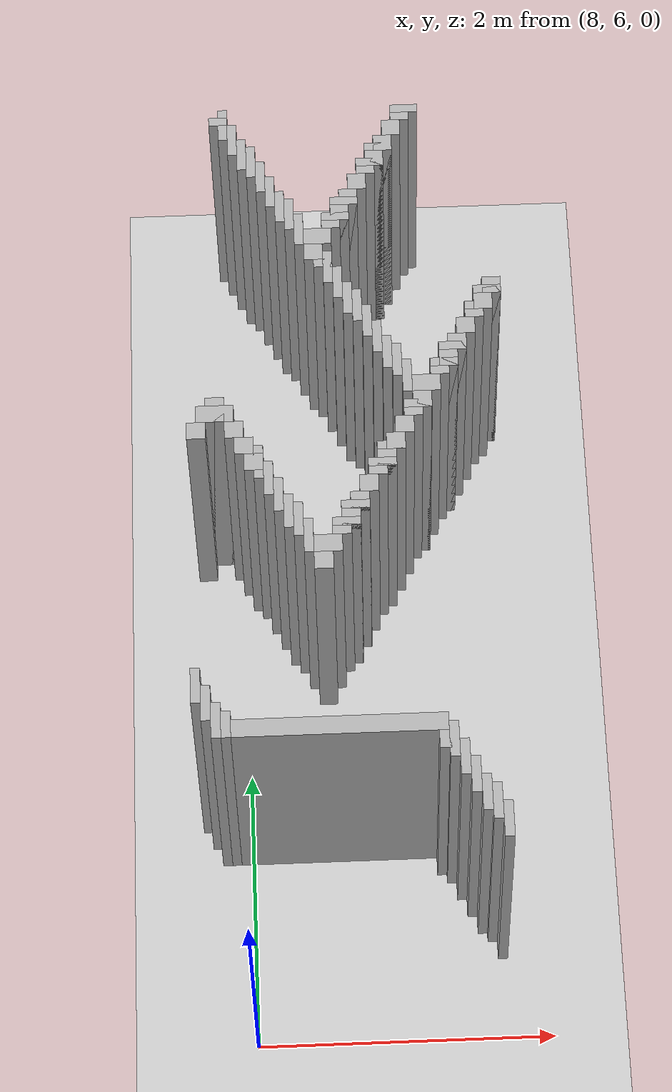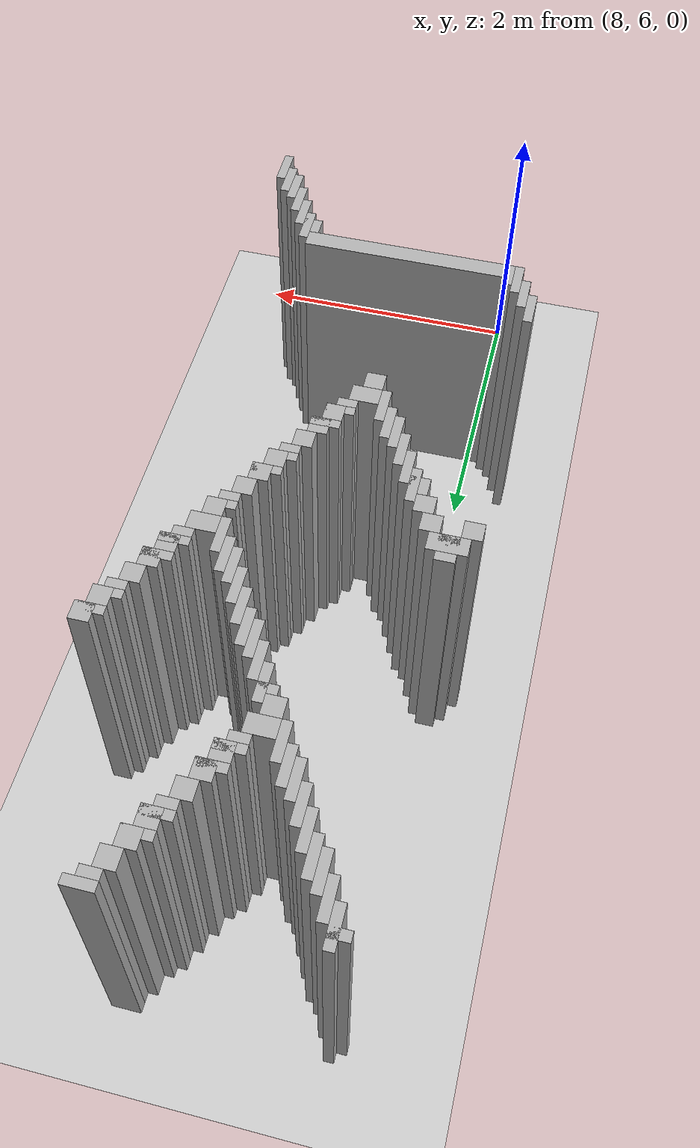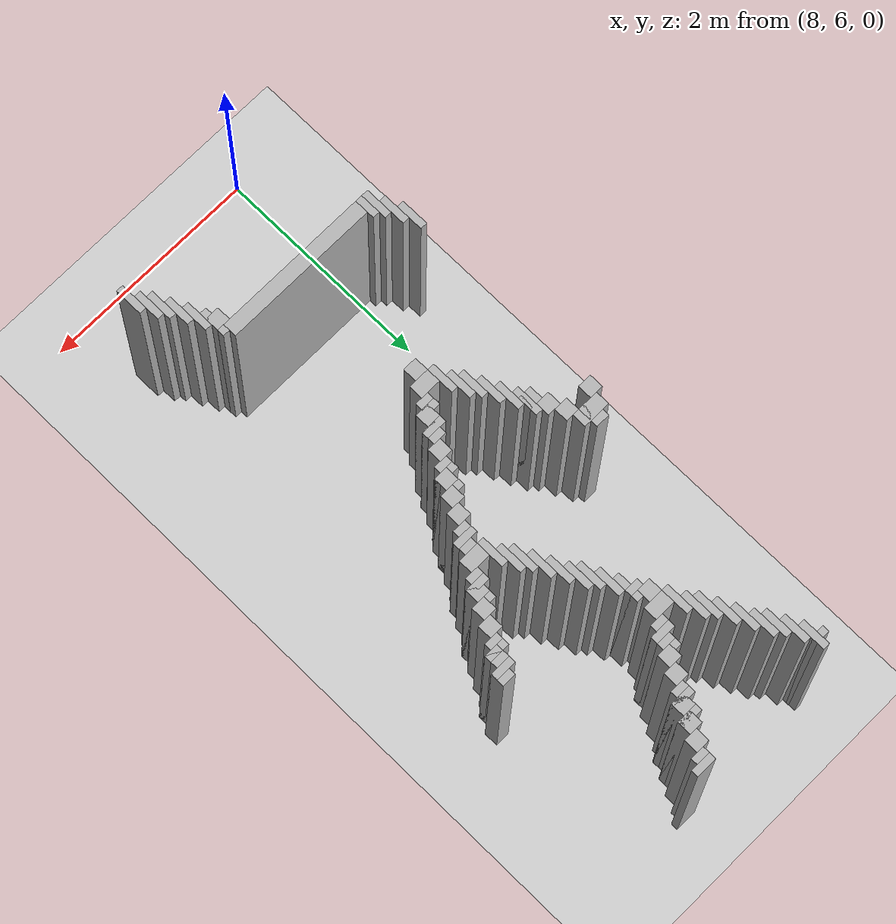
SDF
<sdf version="1.6">
 <world name="slam_world">
  <model name="ground_plane">
   <static>true</static>
   <link name="link">
    <collision name="collision">
     <geometry><plane><normal>0 0 1</normal><size>100 100</size></plane></geometry>
    </collision>
    <visual name="visual">
     <geometry><plane><normal>0 0 1</normal><size>100 100</size></plane></geometry>
     <material>
      <ambient>0.8 0.8 0.8 1</ambient>
      <diffuse>0.8 0.8 0.8 1</diffuse>
      <specular>0.8 0.8 0.8 1</specular>
     </material>
    </visual>
   </link>
  </model>
  <model name="wall_1168">
   <static>true</static>
   <pose>7.946808510638297 12.127659574468083 1.0 0 0 0</pose>
   <link name="link">
    <collision name="collision">
     <geometry><box><size>0.06382978723404255 0.2553191489361702 2.0</size></box></geometry>
    </collision>
    <visual name="visual">
     <geometry><box><size>0.06382978723404255 0.2553191489361702 2.0</size></box></geometry>
     <material><ambient>0.5 0.5 0.5 1</ambient><diffuse>0.7 0.7 0.7 1</diffuse></material>
    </visual>
   </link>
  </model>
  <model name="wall_1169">
   <static>true</static>
   <pose>9.223404255319148 12.223404255319148 1.0 0 0 0</pose>
   <link name="link">
    <collision name="collision">
     <geometry><box><size>0.19148936170212766 0.06382978723404255 2.0</size></box></geometry>
    </collision>
    <visual name="visual">
     <geometry><box><size>0.19148936170212766 0.06382978723404255 2.0</size></box></geometry>
     <material><ambient>0.5 0.5 0.5 1</ambient><diffuse>0.7 0.7 0.7 1</diffuse></material>
    </visual>
   </link>
  </model>
  <model name="wall_1174">
   <static>true</static>
   <pose>7.914893617021276 12.159574468085106 1.0 0 0 0</pose>
   <link name="link">
    <collision name="collision">
     <geometry><box><size>0.1276595744680851 0.06382978723404255 2.0</size></box></geometry>
    </collision>
    <visual name="visual">
     <geometry><box><size>0.1276595744680851 0.06382978723404255 2.0</size></box></geometry>
     <material><ambient>0.5 0.5 0.5 1</ambient><diffuse>0.7 0.7 0.7 1</diffuse></material>
    </visual>
   </link>
  </model>
  <model name="wall_1175">
   <static>true</static>
   <pose>9.191489361702127 12.159574468085106 1.0 0 0 0</pose>
   <link name="link">
    <collision name="collision">
     <geometry><box><size>0.1276595744680851 0.06382978723404255 2.0</size></box></geometry>
    </collision>
    <visual name="visual">
     <geometry><box><size>0.1276595744680851 0.06382978723404255 2.0</size></box></geometry>
     <material><ambient>0.5 0.5 0.5 1</ambient><diffuse>0.7 0.7 0.7 1</diffuse></material>
    </visual>
   </link>
  </model>
  <model name="wall_1183">
   <static>true</static>
   <pose>8.01063829787234 11.999999999999998 1.0 0 0 0</pose>
   <link name="link">
    <collision name="collision">
     <geometry><box><size>0.06382978723404255 0.2553191489361702 2.0</size></box></geometry>
    </collision>
    <visual name="visual">
     <geometry><box><size>0.06382978723404255 0.2553191489361702 2.0</size></box></geometry>
     <material><ambient>0.5 0.5 0.5 1</ambient><diffuse>0.7 0.7 0.7 1</diffuse></material>
    </visual>
   </link>
  </model>
  <model name="wall_1184">
   <static>true</static>
   <pose>9.127659574468085 12.063829787234042 1.0 0 0 0</pose>
   <link name="link">
    <collision name="collision">
     <geometry><box><size>0.1276595744680851 0.1276595744680851 2.0</size></box></geometry>
    </collision>
    <visual name="visual">
     <geometry><box><size>0.1276595744680851 0.1276595744680851 2.0</size></box></geometry>
     <material><ambient>0.5 0.5 0.5 1</ambient><diffuse>0.7 0.7 0.7 1</diffuse></material>
    </visual>
   </link>
  </model>
  <model name="wall_1192">
   <static>true</static>
   <pose>8.074468085106382 11.872340425531913 1.0 0 0 0</pose>
   <link name="link">
    <collision name="collision">
     <geometry><box><size>0.06382978723404255 0.2553191489361702 2.0</size></box></geometry>
    </collision>
    <visual name="visual">
     <geometry><box><size>0.06382978723404255 0.2553191489361702 2.0</size></box></geometry>
     <material><ambient>0.5 0.5 0.5 1</ambient><diffuse>0.7 0.7 0.7 1</diffuse></material>
    </visual>
   </link>
  </model>
  <model name="wall_1193">
   <static>true</static>
   <pose>9.063829787234042 11.936170212765957 1.0 0 0 0</pose>
   <link name="link">
    <collision name="collision">
     <geometry><box><size>0.1276595744680851 0.1276595744680851 2.0</size></box></geometry>
    </collision>
    <visual name="visual">
     <geometry><box><size>0.1276595744680851 0.1276595744680851 2.0</size></box></geometry>
     <material><ambient>0.5 0.5 0.5 1</ambient><diffuse>0.7 0.7 0.7 1</diffuse></material>
    </visual>
   </link>
  </model>
  <model name="wall_1201">
   <static>true</static>
   <pose>8.138297872340425 11.808510638297872 1.0 0 0 0</pose>
   <link name="link">
    <collision name="collision">
     <geometry><box><size>0.06382978723404255 0.2553191489361702 2.0</size></box></geometry>
    </collision>
    <visual name="visual">
     <geometry><box><size>0.06382978723404255 0.2553191489361702 2.0</size></box></geometry>
     <material><ambient>0.5 0.5 0.5 1</ambient><diffuse>0.7 0.7 0.7 1</diffuse></material>
    </visual>
   </link>
  </model>
  <model name="wall_1202">
   <static>true</static>
   <pose>9.03191489361702 11.904255319148936 1.0 0 0 0</pose>
   <link name="link">
    <collision name="collision">
     <geometry><box><size>0.19148936170212766 0.06382978723404255 2.0</size></box></geometry>
    </collision>
    <visual name="visual">
     <geometry><box><size>0.19148936170212766 0.06382978723404255 2.0</size></box></geometry>
     <material><ambient>0.5 0.5 0.5 1</ambient><diffuse>0.7 0.7 0.7 1</diffuse></material>
    </visual>
   </link>
  </model>
  <model name="wall_1207">
   <static>true</static>
   <pose>9.0 11.808510638297872 1.0 0 0 0</pose>
   <link name="link">
    <collision name="collision">
     <geometry><box><size>0.1276595744680851 0.1276595744680851 2.0</size></box></geometry>
    </collision>
    <visual name="visual">
     <geometry><box><size>0.1276595744680851 0.1276595744680851 2.0</size></box></geometry>
     <material><ambient>0.5 0.5 0.5 1</ambient><diffuse>0.7 0.7 0.7 1</diffuse></material>
    </visual>
   </link>
  </model>
  <model name="wall_1215">
   <static>true</static>
   <pose>8.202127659574467 11.680851063829786 1.0 0 0 0</pose>
   <link name="link">
    <collision name="collision">
     <geometry><box><size>0.06382978723404255 0.2553191489361702 2.0</size></box></geometry>
    </collision>
    <visual name="visual">
     <geometry><box><size>0.06382978723404255 0.2553191489361702 2.0</size></box></geometry>
     <material><ambient>0.5 0.5 0.5 1</ambient><diffuse>0.7 0.7 0.7 1</diffuse></material>
    </visual>
   </link>
  </model>
  <model name="wall_1216">
   <static>true</static>
   <pose>8.968085106382977 11.77659574468085 1.0 0 0 0</pose>
   <link name="link">
    <collision name="collision">
     <geometry><box><size>0.19148936170212766 0.06382978723404255 2.0</size></box></geometry>
    </collision>
    <visual name="visual">
     <geometry><box><size>0.19148936170212766 0.06382978723404255 2.0</size></box></geometry>
     <material><ambient>0.5 0.5 0.5 1</ambient><diffuse>0.7 0.7 0.7 1</diffuse></material>
    </visual>
   </link>
  </model>
  <model name="wall_1220">
   <static>true</static>
   <pose>8.936170212765957 11.712765957446807 1.0 0 0 0</pose>
   <link name="link">
    <collision name="collision">
     <geometry><box><size>0.1276595744680851 0.06382978723404255 2.0</size></box></geometry>
    </collision>
    <visual name="visual">
     <geometry><box><size>0.1276595744680851 0.06382978723404255 2.0</size></box></geometry>
     <material><ambient>0.5 0.5 0.5 1</ambient><diffuse>0.7 0.7 0.7 1</diffuse></material>
    </visual>
   </link>
  </model>
  <model name="wall_1228">
   <static>true</static>
   <pose>8.26595744680851 11.553191489361701 1.0 0 0 0</pose>
   <link name="link">
    <collision name="collision">
     <geometry><box><size>0.06382978723404255 0.2553191489361702 2.0</size></box></geometry>
    </collision>
    <visual name="visual">
     <geometry><box><size>0.06382978723404255 0.2553191489361702 2.0</size></box></geometry>
     <material><ambient>0.5 0.5 0.5 1</ambient><diffuse>0.7 0.7 0.7 1</diffuse></material>
    </visual>
   </link>
  </model>
  <model name="wall_1229">
   <static>true</static>
   <pose>8.872340425531915 11.617021276595743 1.0 0 0 0</pose>
   <link name="link">
    <collision name="collision">
     <geometry><box><size>0.1276595744680851 0.1276595744680851 2.0</size></box></geometry>
    </collision>
    <visual name="visual">
     <geometry><box><size>0.1276595744680851 0.1276595744680851 2.0</size></box></geometry>
     <material><ambient>0.5 0.5 0.5 1</ambient><diffuse>0.7 0.7 0.7 1</diffuse></material>
    </visual>
   </link>
  </model>
  <model name="wall_1237">
   <static>true</static>
   <pose>8.329787234042552 11.425531914893616 1.0 0 0 0</pose>
   <link name="link">
    <collision name="collision">
     <geometry><box><size>0.06382978723404255 0.2553191489361702 2.0</size></box></geometry>
    </collision>
    <visual name="visual">
     <geometry><box><size>0.06382978723404255 0.2553191489361702 2.0</size></box></geometry>
     <material><ambient>0.5 0.5 0.5 1</ambient><diffuse>0.7 0.7 0.7 1</diffuse></material>
    </visual>
   </link>
  </model>
  <model name="wall_1238">
   <static>true</static>
   <pose>8.808510638297872 11.489361702127658 1.0 0 0 0</pose>
   <link name="link">
    <collision name="collision">
     <geometry><box><size>0.1276595744680851 0.1276595744680851 2.0</size></box></geometry>
    </collision>
    <visual name="visual">
     <geometry><box><size>0.1276595744680851 0.1276595744680851 2.0</size></box></geometry>
     <material><ambient>0.5 0.5 0.5 1</ambient><diffuse>0.7 0.7 0.7 1</diffuse></material>
    </visual>
   </link>
  </model>
  <model name="wall_1246">
   <static>true</static>
   <pose>8.393617021276595 11.361702127659573 1.0 0 0 0</pose>
   <link name="link">
    <collision name="collision">
     <geometry><box><size>0.06382978723404255 0.2553191489361702 2.0</size></box></geometry>
    </collision>
    <visual name="visual">
     <geometry><box><size>0.06382978723404255 0.2553191489361702 2.0</size></box></geometry>
     <material><ambient>0.5 0.5 0.5 1</ambient><diffuse>0.7 0.7 0.7 1</diffuse></material>
    </visual>
   </link>
  </model>
  <model name="wall_1247">
   <static>true</static>
   <pose>8.77659574468085 11.457446808510637 1.0 0 0 0</pose>
   <link name="link">
    <collision name="collision">
     <geometry><box><size>0.19148936170212766 0.06382978723404255 2.0</size></box></geometry>
    </collision>
    <visual name="visual">
     <geometry><box><size>0.19148936170212766 0.06382978723404255 2.0</size></box></geometry>
     <material><ambient>0.5 0.5 0.5 1</ambient><diffuse>0.7 0.7 0.7 1</diffuse></material>
    </visual>
   </link>
  </model>
  <model name="wall_1251">
   <static>true</static>
   <pose>8.74468085106383 11.361702127659573 1.0 0 0 0</pose>
   <link name="link">
    <collision name="collision">
     <geometry><box><size>0.1276595744680851 0.1276595744680851 2.0</size></box></geometry>
    </collision>
    <visual name="visual">
     <geometry><box><size>0.1276595744680851 0.1276595744680851 2.0</size></box></geometry>
     <material><ambient>0.5 0.5 0.5 1</ambient><diffuse>0.7 0.7 0.7 1</diffuse></material>
    </visual>
   </link>
  </model>
  <model name="wall_1259">
   <static>true</static>
   <pose>8.457446808510637 11.234042553191488 1.0 0 0 0</pose>
   <link name="link">
    <collision name="collision">
     <geometry><box><size>0.06382978723404255 0.2553191489361702 2.0</size></box></geometry>
    </collision>
    <visual name="visual">
     <geometry><box><size>0.06382978723404255 0.2553191489361702 2.0</size></box></geometry>
     <material><ambient>0.5 0.5 0.5 1</ambient><diffuse>0.7 0.7 0.7 1</diffuse></material>
    </visual>
   </link>
  </model>
  <model name="wall_1260">
   <static>true</static>
   <pose>8.712765957446807 11.329787234042552 1.0 0 0 0</pose>
   <link name="link">
    <collision name="collision">
     <geometry><box><size>0.19148936170212766 0.06382978723404255 2.0</size></box></geometry>
    </collision>
    <visual name="visual">
     <geometry><box><size>0.19148936170212766 0.06382978723404255 2.0</size></box></geometry>
     <material><ambient>0.5 0.5 0.5 1</ambient><diffuse>0.7 0.7 0.7 1</diffuse></material>
    </visual>
   </link>
  </model>
  <model name="wall_1264">
   <static>true</static>
   <pose>8.680851063829786 11.26595744680851 1.0 0 0 0</pose>
   <link name="link">
    <collision name="collision">
     <geometry><box><size>0.1276595744680851 0.06382978723404255 2.0</size></box></geometry>
    </collision>
    <visual name="visual">
     <geometry><box><size>0.1276595744680851 0.06382978723404255 2.0</size></box></geometry>
     <material><ambient>0.5 0.5 0.5 1</ambient><diffuse>0.7 0.7 0.7 1</diffuse></material>
    </visual>
   </link>
  </model>
  <model name="wall_1272">
   <static>true</static>
   <pose>8.585106382978722 11.170212765957446 1.0 0 0 0</pose>
   <link name="link">
    <collision name="collision">
     <geometry><box><size>0.19148936170212766 0.1276595744680851 2.0</size></box></geometry>
    </collision>
    <visual name="visual">
     <geometry><box><size>0.19148936170212766 0.1276595744680851 2.0</size></box></geometry>
     <material><ambient>0.5 0.5 0.5 1</ambient><diffuse>0.7 0.7 0.7 1</diffuse></material>
    </visual>
   </link>
  </model>
  <model name="wall_1285">
   <static>true</static>
   <pose>8.553191489361701 11.042553191489361 1.0 0 0 0</pose>
   <link name="link">
    <collision name="collision">
     <geometry><box><size>0.1276595744680851 0.1276595744680851 2.0</size></box></geometry>
    </collision>
    <visual name="visual">
     <geometry><box><size>0.1276595744680851 0.1276595744680851 2.0</size></box></geometry>
     <material><ambient>0.5 0.5 0.5 1</ambient><diffuse>0.7 0.7 0.7 1</diffuse></material>
    </visual>
   </link>
  </model>
  <model name="wall_1290">
   <static>true</static>
   <pose>8.648936170212766 10.914893617021276 1.0 0 0 0</pose>
   <link name="link">
    <collision name="collision">
     <geometry><box><size>0.06382978723404255 0.2553191489361702 2.0</size></box></geometry>
    </collision>
    <visual name="visual">
     <geometry><box><size>0.06382978723404255 0.2553191489361702 2.0</size></box></geometry>
     <material><ambient>0.5 0.5 0.5 1</ambient><diffuse>0.7 0.7 0.7 1</diffuse></material>
    </visual>
   </link>
  </model>
  <model name="wall_1295">
   <static>true</static>
   <pose>8.617021276595745 10.946808510638297 1.0 0 0 0</pose>
   <link name="link">
    <collision name="collision">
     <geometry><box><size>0.1276595744680851 0.06382978723404255 2.0</size></box></geometry>
    </collision>
    <visual name="visual">
     <geometry><box><size>0.1276595744680851 0.06382978723404255 2.0</size></box></geometry>
     <material><ambient>0.5 0.5 0.5 1</ambient><diffuse>0.7 0.7 0.7 1</diffuse></material>
    </visual>
   </link>
  </model>
  <model name="wall_1300">
   <static>true</static>
   <pose>8.712765957446807 10.787234042553191 1.0 0 0 0</pose>
   <link name="link">
    <collision name="collision">
     <geometry><box><size>0.06382978723404255 0.2553191489361702 2.0</size></box></geometry>
    </collision>
    <visual name="visual">
     <geometry><box><size>0.06382978723404255 0.2553191489361702 2.0</size></box></geometry>
     <material><ambient>0.5 0.5 0.5 1</ambient><diffuse>0.7 0.7 0.7 1</diffuse></material>
    </visual>
   </link>
  </model>
  <model name="wall_1305">
   <static>true</static>
   <pose>8.77659574468085 10.659574468085106 1.0 0 0 0</pose>
   <link name="link">
    <collision name="collision">
     <geometry><box><size>0.06382978723404255 0.2553191489361702 2.0</size></box></geometry>
    </collision>
    <visual name="visual">
     <geometry><box><size>0.06382978723404255 0.2553191489361702 2.0</size></box></geometry>
     <material><ambient>0.5 0.5 0.5 1</ambient><diffuse>0.7 0.7 0.7 1</diffuse></material>
    </visual>
   </link>
  </model>
  <model name="wall_1306">
   <static>true</static>
   <pose>9.76595744680851 10.723404255319148 1.0 0 0 0</pose>
   <link name="link">
    <collision name="collision">
     <geometry><box><size>0.1276595744680851 0.1276595744680851 2.0</size></box></geometry>
    </collision>
    <visual name="visual">
     <geometry><box><size>0.1276595744680851 0.1276595744680851 2.0</size></box></geometry>
     <material><ambient>0.5 0.5 0.5 1</ambient><diffuse>0.7 0.7 0.7 1</diffuse></material>
    </visual>
   </link>
  </model>
  <model name="wall_1310">
   <static>true</static>
   <pose>8.840425531914892 10.595744680851062 1.0 0 0 0</pose>
   <link name="link">
    <collision name="collision">
     <geometry><box><size>0.06382978723404255 0.2553191489361702 2.0</size></box></geometry>
    </collision>
    <visual name="visual">
     <geometry><box><size>0.06382978723404255 0.2553191489361702 2.0</size></box></geometry>
     <material><ambient>0.5 0.5 0.5 1</ambient><diffuse>0.7 0.7 0.7 1</diffuse></material>
    </visual>
   </link>
  </model>
  <model name="wall_1311">
   <static>true</static>
   <pose>9.734042553191488 10.691489361702127 1.0 0 0 0</pose>
   <link name="link">
    <collision name="collision">
     <geometry><box><size>0.19148936170212766 0.06382978723404255 2.0</size></box></geometry>
    </collision>
    <visual name="visual">
     <geometry><box><size>0.19148936170212766 0.06382978723404255 2.0</size></box></geometry>
     <material><ambient>0.5 0.5 0.5 1</ambient><diffuse>0.7 0.7 0.7 1</diffuse></material>
    </visual>
   </link>
  </model>
  <model name="wall_1314">
   <static>true</static>
   <pose>9.702127659574467 10.595744680851062 1.0 0 0 0</pose>
   <link name="link">
    <collision name="collision">
     <geometry><box><size>0.1276595744680851 0.1276595744680851 2.0</size></box></geometry>
    </collision>
    <visual name="visual">
     <geometry><box><size>0.1276595744680851 0.1276595744680851 2.0</size></box></geometry>
     <material><ambient>0.5 0.5 0.5 1</ambient><diffuse>0.7 0.7 0.7 1</diffuse></material>
    </visual>
   </link>
  </model>
  <model name="wall_1317">
   <static>true</static>
   <pose>8.904255319148936 10.468085106382977 1.0 0 0 0</pose>
   <link name="link">
    <collision name="collision">
     <geometry><box><size>0.06382978723404255 0.2553191489361702 2.0</size></box></geometry>
    </collision>
    <visual name="visual">
     <geometry><box><size>0.06382978723404255 0.2553191489361702 2.0</size></box></geometry>
     <material><ambient>0.5 0.5 0.5 1</ambient><diffuse>0.7 0.7 0.7 1</diffuse></material>
    </visual>
   </link>
  </model>
  <model name="wall_1318">
   <static>true</static>
   <pose>9.670212765957446 10.563829787234042 1.0 0 0 0</pose>
   <link name="link">
    <collision name="collision">
     <geometry><box><size>0.19148936170212766 0.06382978723404255 2.0</size></box></geometry>
    </collision>
    <visual name="visual">
     <geometry><box><size>0.19148936170212766 0.06382978723404255 2.0</size></box></geometry>
     <material><ambient>0.5 0.5 0.5 1</ambient><diffuse>0.7 0.7 0.7 1</diffuse></material>
    </visual>
   </link>
  </model>
  <model name="wall_1321">
   <static>true</static>
   <pose>9.638297872340425 10.5 1.0 0 0 0</pose>
   <link name="link">
    <collision name="collision">
     <geometry><box><size>0.1276595744680851 0.06382978723404255 2.0</size></box></geometry>
    </collision>
    <visual name="visual">
     <geometry><box><size>0.1276595744680851 0.06382978723404255 2.0</size></box></geometry>
     <material><ambient>0.5 0.5 0.5 1</ambient><diffuse>0.7 0.7 0.7 1</diffuse></material>
    </visual>
   </link>
  </model>
  <model name="wall_1324">
   <static>true</static>
   <pose>8.968085106382977 10.340425531914892 1.0 0 0 0</pose>
   <link name="link">
    <collision name="collision">
     <geometry><box><size>0.06382978723404255 0.2553191489361702 2.0</size></box></geometry>
    </collision>
    <visual name="visual">
     <geometry><box><size>0.06382978723404255 0.2553191489361702 2.0</size></box></geometry>
     <material><ambient>0.5 0.5 0.5 1</ambient><diffuse>0.7 0.7 0.7 1</diffuse></material>
    </visual>
   </link>
  </model>
  <model name="wall_1325">
   <static>true</static>
   <pose>9.574468085106382 10.404255319148936 1.0 0 0 0</pose>
   <link name="link">
    <collision name="collision">
     <geometry><box><size>0.1276595744680851 0.1276595744680851 2.0</size></box></geometry>
    </collision>
    <visual name="visual">
     <geometry><box><size>0.1276595744680851 0.1276595744680851 2.0</size></box></geometry>
     <material><ambient>0.5 0.5 0.5 1</ambient><diffuse>0.7 0.7 0.7 1</diffuse></material>
    </visual>
   </link>
  </model>
  <model name="wall_1329">
   <static>true</static>
   <pose>9.03191489361702 10.212765957446807 1.0 0 0 0</pose>
   <link name="link">
    <collision name="collision">
     <geometry><box><size>0.06382978723404255 0.2553191489361702 2.0</size></box></geometry>
    </collision>
    <visual name="visual">
     <geometry><box><size>0.06382978723404255 0.2553191489361702 2.0</size></box></geometry>
     <material><ambient>0.5 0.5 0.5 1</ambient><diffuse>0.7 0.7 0.7 1</diffuse></material>
    </visual>
   </link>
  </model>
  <model name="wall_1330">
   <static>true</static>
   <pose>9.51063829787234 10.27659574468085 1.0 0 0 0</pose>
   <link name="link">
    <collision name="collision">
     <geometry><box><size>0.1276595744680851 0.1276595744680851 2.0</size></box></geometry>
    </collision>
    <visual name="visual">
     <geometry><box><size>0.1276595744680851 0.1276595744680851 2.0</size></box></geometry>
     <material><ambient>0.5 0.5 0.5 1</ambient><diffuse>0.7 0.7 0.7 1</diffuse></material>
    </visual>
   </link>
  </model>
  <model name="wall_1334">
   <static>true</static>
   <pose>9.095744680851062 10.148936170212766 1.0 0 0 0</pose>
   <link name="link">
    <collision name="collision">
     <geometry><box><size>0.06382978723404255 0.2553191489361702 2.0</size></box></geometry>
    </collision>
    <visual name="visual">
     <geometry><box><size>0.06382978723404255 0.2553191489361702 2.0</size></box></geometry>
     <material><ambient>0.5 0.5 0.5 1</ambient><diffuse>0.7 0.7 0.7 1</diffuse></material>
    </visual>
   </link>
  </model>
  <model name="wall_1335">
   <static>true</static>
   <pose>9.478723404255318 10.24468085106383 1.0 0 0 0</pose>
   <link name="link">
    <collision name="collision">
     <geometry><box><size>0.19148936170212766 0.06382978723404255 2.0</size></box></geometry>
    </collision>
    <visual name="visual">
     <geometry><box><size>0.19148936170212766 0.06382978723404255 2.0</size></box></geometry>
     <material><ambient>0.5 0.5 0.5 1</ambient><diffuse>0.7 0.7 0.7 1</diffuse></material>
    </visual>
   </link>
  </model>
  <model name="wall_1338">
   <static>true</static>
   <pose>9.446808510638297 10.148936170212766 1.0 0 0 0</pose>
   <link name="link">
    <collision name="collision">
     <geometry><box><size>0.1276595744680851 0.1276595744680851 2.0</size></box></geometry>
    </collision>
    <visual name="visual">
     <geometry><box><size>0.1276595744680851 0.1276595744680851 2.0</size></box></geometry>
     <material><ambient>0.5 0.5 0.5 1</ambient><diffuse>0.7 0.7 0.7 1</diffuse></material>
    </visual>
   </link>
  </model>
  <model name="wall_1341">
   <static>true</static>
   <pose>9.159574468085106 10.02127659574468 1.0 0 0 0</pose>
   <link name="link">
    <collision name="collision">
     <geometry><box><size>0.06382978723404255 0.2553191489361702 2.0</size></box></geometry>
    </collision>
    <visual name="visual">
     <geometry><box><size>0.06382978723404255 0.2553191489361702 2.0</size></box></geometry>
     <material><ambient>0.5 0.5 0.5 1</ambient><diffuse>0.7 0.7 0.7 1</diffuse></material>
    </visual>
   </link>
  </model>
  <model name="wall_1342">
   <static>true</static>
   <pose>9.414893617021276 10.117021276595743 1.0 0 0 0</pose>
   <link name="link">
    <collision name="collision">
     <geometry><box><size>0.19148936170212766 0.06382978723404255 2.0</size></box></geometry>
    </collision>
    <visual name="visual">
     <geometry><box><size>0.19148936170212766 0.06382978723404255 2.0</size></box></geometry>
     <material><ambient>0.5 0.5 0.5 1</ambient><diffuse>0.7 0.7 0.7 1</diffuse></material>
    </visual>
   </link>
  </model>
  <model name="wall_1345">
   <static>true</static>
   <pose>9.382978723404255 10.053191489361701 1.0 0 0 0</pose>
   <link name="link">
    <collision name="collision">
     <geometry><box><size>0.1276595744680851 0.06382978723404255 2.0</size></box></geometry>
    </collision>
    <visual name="visual">
     <geometry><box><size>0.1276595744680851 0.06382978723404255 2.0</size></box></geometry>
     <material><ambient>0.5 0.5 0.5 1</ambient><diffuse>0.7 0.7 0.7 1</diffuse></material>
    </visual>
   </link>
  </model>
  <model name="wall_1348">
   <static>true</static>
   <pose>9.287234042553191 9.957446808510637 1.0 0 0 0</pose>
   <link name="link">
    <collision name="collision">
     <geometry><box><size>0.19148936170212766 0.1276595744680851 2.0</size></box></geometry>
    </collision>
    <visual name="visual">
     <geometry><box><size>0.19148936170212766 0.1276595744680851 2.0</size></box></geometry>
     <material><ambient>0.5 0.5 0.5 1</ambient><diffuse>0.7 0.7 0.7 1</diffuse></material>
    </visual>
   </link>
  </model>
  <model name="wall_1357">
   <static>true</static>
   <pose>7.8510638297872335 9.797872340425531 1.0 0 0 0</pose>
   <link name="link">
    <collision name="collision">
     <geometry><box><size>0.1276595744680851 0.19148936170212766 2.0</size></box></geometry>
    </collision>
    <visual name="visual">
     <geometry><box><size>0.1276595744680851 0.19148936170212766 2.0</size></box></geometry>
     <material><ambient>0.5 0.5 0.5 1</ambient><diffuse>0.7 0.7 0.7 1</diffuse></material>
    </visual>
   </link>
  </model>
  <model name="wall_1358">
   <static>true</static>
   <pose>9.25531914893617 9.829787234042552 1.0 0 0 0</pose>
   <link name="link">
    <collision name="collision">
     <geometry><box><size>0.1276595744680851 0.1276595744680851 2.0</size></box></geometry>
    </collision>
    <visual name="visual">
     <geometry><box><size>0.1276595744680851 0.1276595744680851 2.0</size></box></geometry>
     <material><ambient>0.5 0.5 0.5 1</ambient><diffuse>0.7 0.7 0.7 1</diffuse></material>
    </visual>
   </link>
  </model>
  <model name="wall_1366">
   <static>true</static>
   <pose>7.8510638297872335 9.76595744680851 1.0 0 0 0</pose>
   <link name="link">
    <collision name="collision">
     <geometry><box><size>0.2553191489361702 0.1276595744680851 2.0</size></box></geometry>
    </collision>
    <visual name="visual">
     <geometry><box><size>0.2553191489361702 0.1276595744680851 2.0</size></box></geometry>
     <material><ambient>0.5 0.5 0.5 1</ambient><diffuse>0.7 0.7 0.7 1</diffuse></material>
    </visual>
   </link>
  </model>
  <model name="wall_1367">
   <static>true</static>
   <pose>9.223404255319148 9.797872340425531 1.0 0 0 0</pose>
   <link name="link">
    <collision name="collision">
     <geometry><box><size>0.19148936170212766 0.06382978723404255 2.0</size></box></geometry>
    </collision>
    <visual name="visual">
     <geometry><box><size>0.19148936170212766 0.06382978723404255 2.0</size></box></geometry>
     <material><ambient>0.5 0.5 0.5 1</ambient><diffuse>0.7 0.7 0.7 1</diffuse></material>
    </visual>
   </link>
  </model>
  <model name="wall_1374">
   <static>true</static>
   <pose>9.191489361702127 9.734042553191488 1.0 0 0 0</pose>
   <link name="link">
    <collision name="collision">
     <geometry><box><size>0.1276595744680851 0.06382978723404255 2.0</size></box></geometry>
    </collision>
    <visual name="visual">
     <geometry><box><size>0.1276595744680851 0.06382978723404255 2.0</size></box></geometry>
     <material><ambient>0.5 0.5 0.5 1</ambient><diffuse>0.7 0.7 0.7 1</diffuse></material>
    </visual>
   </link>
  </model>
  <model name="wall_1382">
   <static>true</static>
   <pose>7.723404255319148 9.638297872340425 1.0 0 0 0</pose>
   <link name="link">
    <collision name="collision">
     <geometry><box><size>0.1276595744680851 0.1276595744680851 2.0</size></box></geometry>
    </collision>
    <visual name="visual">
     <geometry><box><size>0.1276595744680851 0.1276595744680851 2.0</size></box></geometry>
     <material><ambient>0.5 0.5 0.5 1</ambient><diffuse>0.7 0.7 0.7 1</diffuse></material>
    </visual>
   </link>
  </model>
  <model name="wall_1383">
   <static>true</static>
   <pose>7.978723404255319 9.638297872340425 1.0 0 0 0</pose>
   <link name="link">
    <collision name="collision">
     <geometry><box><size>0.1276595744680851 0.1276595744680851 2.0</size></box></geometry>
    </collision>
    <visual name="visual">
     <geometry><box><size>0.1276595744680851 0.1276595744680851 2.0</size></box></geometry>
     <material><ambient>0.5 0.5 0.5 1</ambient><diffuse>0.7 0.7 0.7 1</diffuse></material>
    </visual>
   </link>
  </model>
  <model name="wall_1384">
   <static>true</static>
   <pose>9.127659574468085 9.638297872340425 1.0 0 0 0</pose>
   <link name="link">
    <collision name="collision">
     <geometry><box><size>0.1276595744680851 0.1276595744680851 2.0</size></box></geometry>
    </collision>
    <visual name="visual">
     <geometry><box><size>0.1276595744680851 0.1276595744680851 2.0</size></box></geometry>
     <material><ambient>0.5 0.5 0.5 1</ambient><diffuse>0.7 0.7 0.7 1</diffuse></material>
    </visual>
   </link>
  </model>
  <model name="wall_1394">
   <static>true</static>
   <pose>8.042553191489361 9.51063829787234 1.0 0 0 0</pose>
   <link name="link">
    <collision name="collision">
     <geometry><box><size>0.1276595744680851 0.1276595744680851 2.0</size></box></geometry>
    </collision>
    <visual name="visual">
     <geometry><box><size>0.1276595744680851 0.1276595744680851 2.0</size></box></geometry>
     <material><ambient>0.5 0.5 0.5 1</ambient><diffuse>0.7 0.7 0.7 1</diffuse></material>
    </visual>
   </link>
  </model>
  <model name="wall_1395">
   <static>true</static>
   <pose>9.063829787234042 9.51063829787234 1.0 0 0 0</pose>
   <link name="link">
    <collision name="collision">
     <geometry><box><size>0.1276595744680851 0.1276595744680851 2.0</size></box></geometry>
    </collision>
    <visual name="visual">
     <geometry><box><size>0.1276595744680851 0.1276595744680851 2.0</size></box></geometry>
     <material><ambient>0.5 0.5 0.5 1</ambient><diffuse>0.7 0.7 0.7 1</diffuse></material>
    </visual>
   </link>
  </model>
  <model name="wall_1405">
   <static>true</static>
   <pose>8.138297872340425 9.382978723404255 1.0 0 0 0</pose>
   <link name="link">
    <collision name="collision">
     <geometry><box><size>0.06382978723404255 0.2553191489361702 2.0</size></box></geometry>
    </collision>
    <visual name="visual">
     <geometry><box><size>0.06382978723404255 0.2553191489361702 2.0</size></box></geometry>
     <material><ambient>0.5 0.5 0.5 1</ambient><diffuse>0.7 0.7 0.7 1</diffuse></material>
    </visual>
   </link>
  </model>
  <model name="wall_1406">
   <static>true</static>
   <pose>9.03191489361702 9.478723404255318 1.0 0 0 0</pose>
   <link name="link">
    <collision name="collision">
     <geometry><box><size>0.19148936170212766 0.06382978723404255 2.0</size></box></geometry>
    </collision>
    <visual name="visual">
     <geometry><box><size>0.19148936170212766 0.06382978723404255 2.0</size></box></geometry>
     <material><ambient>0.5 0.5 0.5 1</ambient><diffuse>0.7 0.7 0.7 1</diffuse></material>
    </visual>
   </link>
  </model>
  <model name="wall_1414">
   <static>true</static>
   <pose>8.106382978723403 9.382978723404255 1.0 0 0 0</pose>
   <link name="link">
    <collision name="collision">
     <geometry><box><size>0.1276595744680851 0.1276595744680851 2.0</size></box></geometry>
    </collision>
    <visual name="visual">
     <geometry><box><size>0.1276595744680851 0.1276595744680851 2.0</size></box></geometry>
     <material><ambient>0.5 0.5 0.5 1</ambient><diffuse>0.7 0.7 0.7 1</diffuse></material>
    </visual>
   </link>
  </model>
  <model name="wall_1415">
   <static>true</static>
   <pose>9.0 9.382978723404255 1.0 0 0 0</pose>
   <link name="link">
    <collision name="collision">
     <geometry><box><size>0.1276595744680851 0.1276595744680851 2.0</size></box></geometry>
    </collision>
    <visual name="visual">
     <geometry><box><size>0.1276595744680851 0.1276595744680851 2.0</size></box></geometry>
     <material><ambient>0.5 0.5 0.5 1</ambient><diffuse>0.7 0.7 0.7 1</diffuse></material>
    </visual>
   </link>
  </model>
  <model name="wall_1424">
   <static>true</static>
   <pose>8.202127659574467 9.25531914893617 1.0 0 0 0</pose>
   <link name="link">
    <collision name="collision">
     <geometry><box><size>0.06382978723404255 0.2553191489361702 2.0</size></box></geometry>
    </collision>
    <visual name="visual">
     <geometry><box><size>0.06382978723404255 0.2553191489361702 2.0</size></box></geometry>
     <material><ambient>0.5 0.5 0.5 1</ambient><diffuse>0.7 0.7 0.7 1</diffuse></material>
    </visual>
   </link>
  </model>
  <model name="wall_1425">
   <static>true</static>
   <pose>8.968085106382977 9.351063829787233 1.0 0 0 0</pose>
   <link name="link">
    <collision name="collision">
     <geometry><box><size>0.19148936170212766 0.06382978723404255 2.0</size></box></geometry>
    </collision>
    <visual name="visual">
     <geometry><box><size>0.19148936170212766 0.06382978723404255 2.0</size></box></geometry>
     <material><ambient>0.5 0.5 0.5 1</ambient><diffuse>0.7 0.7 0.7 1</diffuse></material>
    </visual>
   </link>
  </model>
  <model name="wall_1432">
   <static>true</static>
   <pose>8.936170212765957 9.287234042553191 1.0 0 0 0</pose>
   <link name="link">
    <collision name="collision">
     <geometry><box><size>0.1276595744680851 0.06382978723404255 2.0</size></box></geometry>
    </collision>
    <visual name="visual">
     <geometry><box><size>0.1276595744680851 0.06382978723404255 2.0</size></box></geometry>
     <material><ambient>0.5 0.5 0.5 1</ambient><diffuse>0.7 0.7 0.7 1</diffuse></material>
    </visual>
   </link>
  </model>
  <model name="wall_1441">
   <static>true</static>
   <pose>8.26595744680851 9.127659574468085 1.0 0 0 0</pose>
   <link name="link">
    <collision name="collision">
     <geometry><box><size>0.06382978723404255 0.2553191489361702 2.0</size></box></geometry>
    </collision>
    <visual name="visual">
     <geometry><box><size>0.06382978723404255 0.2553191489361702 2.0</size></box></geometry>
     <material><ambient>0.5 0.5 0.5 1</ambient><diffuse>0.7 0.7 0.7 1</diffuse></material>
    </visual>
   </link>
  </model>
  <model name="wall_1442">
   <static>true</static>
   <pose>8.872340425531915 9.191489361702127 1.0 0 0 0</pose>
   <link name="link">
    <collision name="collision">
     <geometry><box><size>0.1276595744680851 0.1276595744680851 2.0</size></box></geometry>
    </collision>
    <visual name="visual">
     <geometry><box><size>0.1276595744680851 0.1276595744680851 2.0</size></box></geometry>
     <material><ambient>0.5 0.5 0.5 1</ambient><diffuse>0.7 0.7 0.7 1</diffuse></material>
    </visual>
   </link>
  </model>
  <model name="wall_1452">
   <static>true</static>
   <pose>8.329787234042552 9.0 1.0 0 0 0</pose>
   <link name="link">
    <collision name="collision">
     <geometry><box><size>0.06382978723404255 0.2553191489361702 2.0</size></box></geometry>
    </collision>
    <visual name="visual">
     <geometry><box><size>0.06382978723404255 0.2553191489361702 2.0</size></box></geometry>
     <material><ambient>0.5 0.5 0.5 1</ambient><diffuse>0.7 0.7 0.7 1</diffuse></material>
    </visual>
   </link>
  </model>
  <model name="wall_1453">
   <static>true</static>
   <pose>8.808510638297872 9.063829787234042 1.0 0 0 0</pose>
   <link name="link">
    <collision name="collision">
     <geometry><box><size>0.1276595744680851 0.1276595744680851 2.0</size></box></geometry>
    </collision>
    <visual name="visual">
     <geometry><box><size>0.1276595744680851 0.1276595744680851 2.0</size></box></geometry>
     <material><ambient>0.5 0.5 0.5 1</ambient><diffuse>0.7 0.7 0.7 1</diffuse></material>
    </visual>
   </link>
  </model>
  <model name="wall_1463">
   <static>true</static>
   <pose>8.393617021276595 8.936170212765957 1.0 0 0 0</pose>
   <link name="link">
    <collision name="collision">
     <geometry><box><size>0.06382978723404255 0.2553191489361702 2.0</size></box></geometry>
    </collision>
    <visual name="visual">
     <geometry><box><size>0.06382978723404255 0.2553191489361702 2.0</size></box></geometry>
     <material><ambient>0.5 0.5 0.5 1</ambient><diffuse>0.7 0.7 0.7 1</diffuse></material>
    </visual>
   </link>
  </model>
  <model name="wall_1464">
   <static>true</static>
   <pose>8.77659574468085 9.03191489361702 1.0 0 0 0</pose>
   <link name="link">
    <collision name="collision">
     <geometry><box><size>0.19148936170212766 0.06382978723404255 2.0</size></box></geometry>
    </collision>
    <visual name="visual">
     <geometry><box><size>0.19148936170212766 0.06382978723404255 2.0</size></box></geometry>
     <material><ambient>0.5 0.5 0.5 1</ambient><diffuse>0.7 0.7 0.7 1</diffuse></material>
    </visual>
   </link>
  </model>
  <model name="wall_1471">
   <static>true</static>
   <pose>8.74468085106383 8.936170212765957 1.0 0 0 0</pose>
   <link name="link">
    <collision name="collision">
     <geometry><box><size>0.1276595744680851 0.1276595744680851 2.0</size></box></geometry>
    </collision>
    <visual name="visual">
     <geometry><box><size>0.1276595744680851 0.1276595744680851 2.0</size></box></geometry>
     <material><ambient>0.5 0.5 0.5 1</ambient><diffuse>0.7 0.7 0.7 1</diffuse></material>
    </visual>
   </link>
  </model>
  <model name="wall_1480">
   <static>true</static>
   <pose>8.457446808510637 8.808510638297872 1.0 0 0 0</pose>
   <link name="link">
    <collision name="collision">
     <geometry><box><size>0.06382978723404255 0.2553191489361702 2.0</size></box></geometry>
    </collision>
    <visual name="visual">
     <geometry><box><size>0.06382978723404255 0.2553191489361702 2.0</size></box></geometry>
     <material><ambient>0.5 0.5 0.5 1</ambient><diffuse>0.7 0.7 0.7 1</diffuse></material>
    </visual>
   </link>
  </model>
  <model name="wall_1481">
   <static>true</static>
   <pose>8.712765957446807 8.904255319148936 1.0 0 0 0</pose>
   <link name="link">
    <collision name="collision">
     <geometry><box><size>0.19148936170212766 0.06382978723404255 2.0</size></box></geometry>
    </collision>
    <visual name="visual">
     <geometry><box><size>0.19148936170212766 0.06382978723404255 2.0</size></box></geometry>
     <material><ambient>0.5 0.5 0.5 1</ambient><diffuse>0.7 0.7 0.7 1</diffuse></material>
    </visual>
   </link>
  </model>
  <model name="wall_1488">
   <static>true</static>
   <pose>8.680851063829786 8.840425531914892 1.0 0 0 0</pose>
   <link name="link">
    <collision name="collision">
     <geometry><box><size>0.1276595744680851 0.06382978723404255 2.0</size></box></geometry>
    </collision>
    <visual name="visual">
     <geometry><box><size>0.1276595744680851 0.06382978723404255 2.0</size></box></geometry>
     <material><ambient>0.5 0.5 0.5 1</ambient><diffuse>0.7 0.7 0.7 1</diffuse></material>
    </visual>
   </link>
  </model>
  <model name="wall_1496">
   <static>true</static>
   <pose>8.585106382978722 8.74468085106383 1.0 0 0 0</pose>
   <link name="link">
    <collision name="collision">
     <geometry><box><size>0.19148936170212766 0.1276595744680851 2.0</size></box></geometry>
    </collision>
    <visual name="visual">
     <geometry><box><size>0.19148936170212766 0.1276595744680851 2.0</size></box></geometry>
     <material><ambient>0.5 0.5 0.5 1</ambient><diffuse>0.7 0.7 0.7 1</diffuse></material>
    </visual>
   </link>
  </model>
  <model name="wall_1512">
   <static>true</static>
   <pose>8.553191489361701 8.617021276595745 1.0 0 0 0</pose>
   <link name="link">
    <collision name="collision">
     <geometry><box><size>0.1276595744680851 0.1276595744680851 2.0</size></box></geometry>
    </collision>
    <visual name="visual">
     <geometry><box><size>0.1276595744680851 0.1276595744680851 2.0</size></box></geometry>
     <material><ambient>0.5 0.5 0.5 1</ambient><diffuse>0.7 0.7 0.7 1</diffuse></material>
    </visual>
   </link>
  </model>
  <model name="wall_1586">
   <static>true</static>
   <pose>7.691489361702127 7.723404255319148 1.0 0 0 0</pose>
   <link name="link">
    <collision name="collision">
     <geometry><box><size>0.06382978723404255 0.2553191489361702 2.0</size></box></geometry>
    </collision>
    <visual name="visual">
     <geometry><box><size>0.06382978723404255 0.2553191489361702 2.0</size></box></geometry>
     <material><ambient>0.5 0.5 0.5 1</ambient><diffuse>0.7 0.7 0.7 1</diffuse></material>
    </visual>
   </link>
  </model>
  <model name="wall_1595">
   <static>true</static>
   <pose>7.755319148936169 7.595744680851063 1.0 0 0 0</pose>
   <link name="link">
    <collision name="collision">
     <geometry><box><size>0.06382978723404255 0.2553191489361702 2.0</size></box></geometry>
    </collision>
    <visual name="visual">
     <geometry><box><size>0.06382978723404255 0.2553191489361702 2.0</size></box></geometry>
     <material><ambient>0.5 0.5 0.5 1</ambient><diffuse>0.7 0.7 0.7 1</diffuse></material>
    </visual>
   </link>
  </model>
  <model name="wall_1604">
   <static>true</static>
   <pose>7.819148936170212 7.468085106382978 1.0 0 0 0</pose>
   <link name="link">
    <collision name="collision">
     <geometry><box><size>0.06382978723404255 0.2553191489361702 2.0</size></box></geometry>
    </collision>
    <visual name="visual">
     <geometry><box><size>0.06382978723404255 0.2553191489361702 2.0</size></box></geometry>
     <material><ambient>0.5 0.5 0.5 1</ambient><diffuse>0.7 0.7 0.7 1</diffuse></material>
    </visual>
   </link>
  </model>
  <model name="wall_1609">
   <static>true</static>
   <pose>7.882978723404254 7.436170212765957 1.0 0 0 0</pose>
   <link name="link">
    <collision name="collision">
     <geometry><box><size>0.06382978723404255 0.19148936170212766 2.0</size></box></geometry>
    </collision>
    <visual name="visual">
     <geometry><box><size>0.06382978723404255 0.19148936170212766 2.0</size></box></geometry>
     <material><ambient>0.5 0.5 0.5 1</ambient><diffuse>0.7 0.7 0.7 1</diffuse></material>
    </visual>
   </link>
  </model>
  <model name="wall_1614">
   <static>true</static>
   <pose>8.617021276595745 7.404255319148936 1.0 0 0 0</pose>
   <link name="link">
    <collision name="collision">
     <geometry><box><size>1.404255319148936 0.1276595744680851 2.0</size></box></geometry>
    </collision>
    <visual name="visual">
     <geometry><box><size>1.404255319148936 0.1276595744680851 2.0</size></box></geometry>
     <material><ambient>0.5 0.5 0.5 1</ambient><diffuse>0.7 0.7 0.7 1</diffuse></material>
    </visual>
   </link>
  </model>
  <model name="wall_1622">
   <static>true</static>
   <pose>9.351063829787233 7.276595744680851 1.0 0 0 0</pose>
   <link name="link">
    <collision name="collision">
     <geometry><box><size>0.06382978723404255 0.2553191489361702 2.0</size></box></geometry>
    </collision>
    <visual name="visual">
     <geometry><box><size>0.06382978723404255 0.2553191489361702 2.0</size></box></geometry>
     <material><ambient>0.5 0.5 0.5 1</ambient><diffuse>0.7 0.7 0.7 1</diffuse></material>
    </visual>
   </link>
  </model>
  <model name="wall_1630">
   <static>true</static>
   <pose>9.319148936170212 7.276595744680851 1.0 0 0 0</pose>
   <link name="link">
    <collision name="collision">
     <geometry><box><size>0.1276595744680851 0.1276595744680851 2.0</size></box></geometry>
    </collision>
    <visual name="visual">
     <geometry><box><size>0.1276595744680851 0.1276595744680851 2.0</size></box></geometry>
     <material><ambient>0.5 0.5 0.5 1</ambient><diffuse>0.7 0.7 0.7 1</diffuse></material>
    </visual>
   </link>
  </model>
  <model name="wall_1638">
   <static>true</static>
   <pose>9.414893617021276 7.148936170212766 1.0 0 0 0</pose>
   <link name="link">
    <collision name="collision">
     <geometry><box><size>0.06382978723404255 0.2553191489361702 2.0</size></box></geometry>
    </collision>
    <visual name="visual">
     <geometry><box><size>0.06382978723404255 0.2553191489361702 2.0</size></box></geometry>
     <material><ambient>0.5 0.5 0.5 1</ambient><diffuse>0.7 0.7 0.7 1</diffuse></material>
    </visual>
   </link>
  </model>
  <model name="wall_1650">
   <static>true</static>
   <pose>9.478723404255318 7.0212765957446805 1.0 0 0 0</pose>
   <link name="link">
    <collision name="collision">
     <geometry><box><size>0.06382978723404255 0.2553191489361702 2.0</size></box></geometry>
    </collision>
    <visual name="visual">
     <geometry><box><size>0.06382978723404255 0.2553191489361702 2.0</size></box></geometry>
     <material><ambient>0.5 0.5 0.5 1</ambient><diffuse>0.7 0.7 0.7 1</diffuse></material>
    </visual>
   </link>
  </model>
  <model name="wall_1658">
   <static>true</static>
   <pose>9.542553191489361 6.8936170212765955 1.0 0 0 0</pose>
   <link name="link">
    <collision name="collision">
     <geometry><box><size>0.06382978723404255 0.2553191489361702 2.0</size></box></geometry>
    </collision>
    <visual name="visual">
     <geometry><box><size>0.06382978723404255 0.2553191489361702 2.0</size></box></geometry>
     <material><ambient>0.5 0.5 0.5 1</ambient><diffuse>0.7 0.7 0.7 1</diffuse></material>
    </visual>
   </link>
  </model>
  <model name="wall_1666">
   <static>true</static>
   <pose>9.606382978723403 6.829787234042553 1.0 0 0 0</pose>
   <link name="link">
    <collision name="collision">
     <geometry><box><size>0.06382978723404255 0.2553191489361702 2.0</size></box></geometry>
    </collision>
    <visual name="visual">
     <geometry><box><size>0.06382978723404255 0.2553191489361702 2.0</size></box></geometry>
     <material><ambient>0.5 0.5 0.5 1</ambient><diffuse>0.7 0.7 0.7 1</diffuse></material>
    </visual>
   </link>
  </model>
  <model name="wall_1678">
   <static>true</static>
   <pose>9.670212765957446 6.702127659574468 1.0 0 0 0</pose>
   <link name="link">
    <collision name="collision">
     <geometry><box><size>0.06382978723404255 0.2553191489361702 2.0</size></box></geometry>
    </collision>
    <visual name="visual">
     <geometry><box><size>0.06382978723404255 0.2553191489361702 2.0</size></box></geometry>
     <material><ambient>0.5 0.5 0.5 1</ambient><diffuse>0.7 0.7 0.7 1</diffuse></material>
    </visual>
   </link>
  </model>
 </world>
</sdf>
